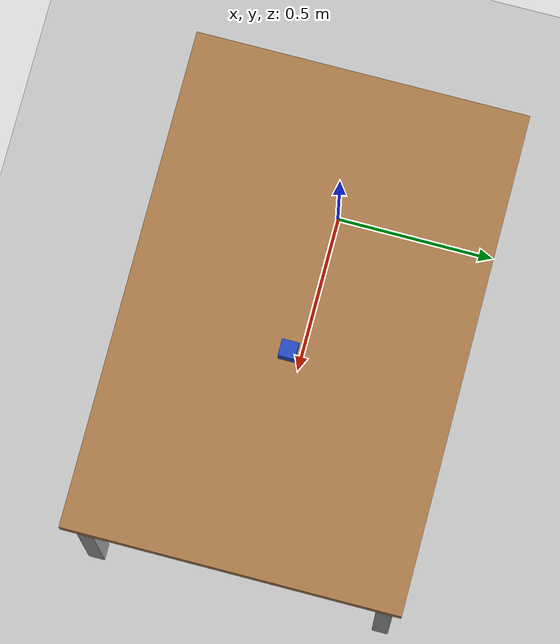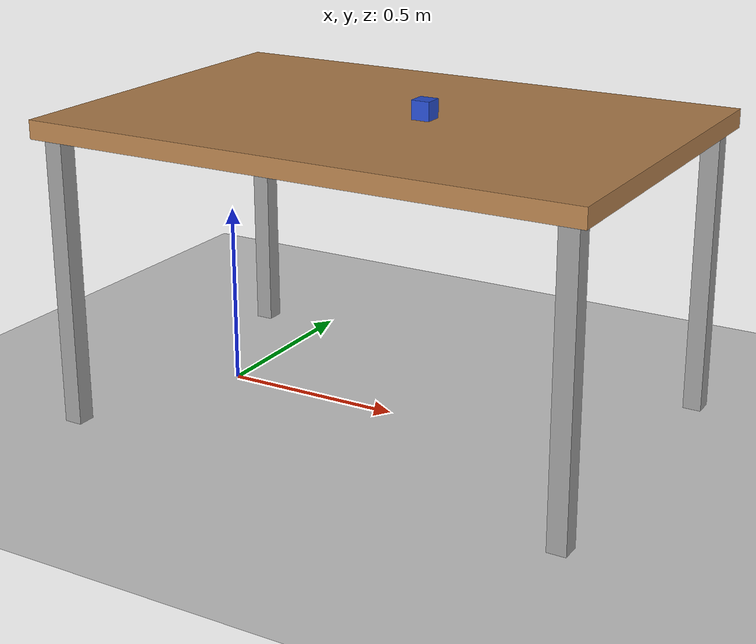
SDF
<?xml version="1.0" ?>
<sdf version="1.6">
  <world name="default">
    <include>
      <uri>model://sun</uri>
    </include>
    <include>
      <uri>model://ground_plane</uri>
    </include>

    <!-- WORKBENCH -->
    <model name="workbench">
      <static>true</static>
      <pose>0 0 0 0 0 0</pose>
      <link name="table_top">
        <pose>0.5 0 0.8 0 0 0</pose>
        <collision name="collision">
          <geometry>
            <box>
              <size>1.5 1.0 0.05</size>
            </box>
          </geometry>
        </collision>
        <visual name="visual">
          <geometry>
            <box>
              <size>1.5 1.0 0.05</size>
            </box>
          </geometry>
          <material>
            <script>
              <uri>file://media/materials/scripts/gazebo.material</uri>
              <name>Gazebo/Wood</name>
            </script>
          </material>
        </visual>
      </link>

      <!-- Table Legs -->
      <link name="leg1">
        <pose>1.2 0.45 0.4 0 0 0</pose>
        <collision name="collision">
          <geometry>
            <box><size>0.05 0.05 0.8</size></box>
          </geometry>
        </collision>
        <visual name="visual">
          <geometry>
            <box><size>0.05 0.05 0.8</size></box>
          </geometry>
          <material><script><name>Gazebo/Grey</name></script></material>
        </visual>
      </link>
      <link name="leg2">
        <pose>1.2 -0.45 0.4 0 0 0</pose>
        <collision name="collision">
          <geometry>
            <box><size>0.05 0.05 0.8</size></box>
          </geometry>
        </collision>
        <visual name="visual">
          <geometry>
            <box><size>0.05 0.05 0.8</size></box>
          </geometry>
          <material><script><name>Gazebo/Grey</name></script></material>
        </visual>
      </link>
      <link name="leg3">
        <pose>-0.2 0.45 0.4 0 0 0</pose>
        <collision name="collision">
          <geometry>
            <box><size>0.05 0.05 0.8</size></box>
          </geometry>
        </collision>
        <visual name="visual">
          <geometry>
            <box><size>0.05 0.05 0.8</size></box>
          </geometry>
          <material><script><name>Gazebo/Grey</name></script></material>
        </visual>
      </link>
      <link name="leg4">
        <pose>-0.2 -0.45 0.4 0 0 0</pose>
        <collision name="collision">
          <geometry>
            <box><size>0.05 0.05 0.8</size></box>
          </geometry>
        </collision>
        <visual name="visual">
          <geometry>
            <box><size>0.05 0.05 0.8</size></box>
          </geometry>
          <material><script><name>Gazebo/Grey</name></script></material>
        </visual>
      </link>
    </model>

    <!-- TEST CUBE -->
    <model name="test_cube">
      <pose>0.6 0 0.85 0 0 0</pose>
      <link name="link">
        <inertial>
          <mass>0.5</mass>
          <inertia>
            <ixx>0.001</ixx> <ixy>0</ixy> <ixz>0</ixz> <iyy>0.001</iyy> <iyz>0</iyz> <izz>0.001</izz>
          </inertia>
        </inertial>
        <collision name="collision">
          <geometry>
            <box><size>0.05 0.05 0.05</size></box>
          </geometry>
        </collision>
        <visual name="visual">
          <geometry>
            <box><size>0.05 0.05 0.05</size></box>
          </geometry>
          <material>
            <script>
              <name>Gazebo/Blue</name>
            </script>
          </material>
        </visual>
      </link>
    </model>

  </world>
</sdf>
